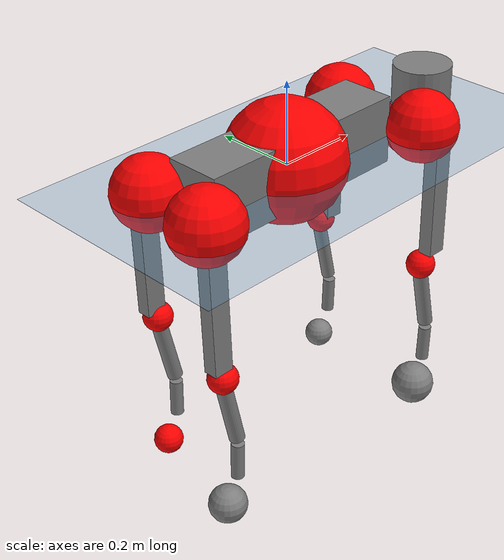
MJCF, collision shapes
<mujoco model="go2">
  <compiler angle="radian" assetdir="assets" balanceinertia="true" inertiafromgeom="false"/>

  <option timestep="0.005" density="1.2" viscosity="2e-05"/>

  <size nkey="1"/>

  <visual>
    <quality shadowsize="8192"/>
    <map shadowclip="0.5"/>
  </visual>

  <default>
    <default class="/">
      <geom contype="0" conaffinity="0" group="1" solref="-1000 -80"/>
      <site size="0.01 0.005 0.005" group="5"/>
      <general forcelimited="true" biastype="affine" gainprm="20" biasprm="0 -20 -0.5"/>
      <default class="go2">
        <joint armature="0.01" damping="0.01" frictionloss="0.2"/>
        <geom condim="1" margin="0.001"/>
        <default class="visual">
          <geom type="mesh" group="2"/>
        </default>
        <default class="collision">
          <geom group="3"/>
          <default class="foot">
            <geom size="0.022 0 0" condim="6" priority="1" friction="0.8 0.02 0.01" solimp="0.015 1 0.022"/>
          </default>
        </default>
        <default class="reward_collision_sphere">
          <geom group="5" rgba="1 0 0 1"/>
        </default>
      </default>
    </default>
  </default>

  <asset>
    <texture type="skybox" colorspace="auto" name="//unnamed_texture_0" builtin="gradient" rgb1="0.95 0.95 0.95" rgb2="0.95 0.95 0.95" width="100" height="600"/>
    <texture type="2d" colorspace="auto" name="texplane" builtin="checker" rgb1="0.345 0.575 0.748" rgb2="0.345 0.575 0.748" markrgb="1 1 1" width="512" height="512"/>
    <material name="MatPlane" class="/" texture="texplane" texuniform="true" texrepeat="2 2" specular="0.9"/>
    <material name="metal" class="/" rgba="0.9 0.95 0.95 1"/>
    <material name="black" class="/" rgba="0 0 0 1"/>
    <material name="white" class="/"/>
    <material name="gray" class="/" rgba="0.671705 0.692426 0.77427 1"/>
    <mesh name="base_0" class="/" file="base_0.obj"/>
    <mesh name="base_1" class="/" file="base_1.obj"/>
    <mesh name="base_2" class="/" file="base_2.obj"/>
    <mesh name="base_3" class="/" file="base_3.obj"/>
    <mesh name="base_4" class="/" file="base_4.obj"/>
    <mesh name="hip_0" class="/" file="hip_0.obj"/>
    <mesh name="hip_1" class="/" file="hip_1.obj"/>
    <mesh name="thigh_0" class="/" file="thigh_0.obj"/>
    <mesh name="thigh_1" class="/" file="thigh_1.obj"/>
    <mesh name="thigh_mirror_0" class="/" file="thigh_mirror_0.obj"/>
    <mesh name="thigh_mirror_1" class="/" file="thigh_mirror_1.obj"/>
    <mesh name="calf_0" class="/" file="calf_0.obj"/>
    <mesh name="calf_1" class="/" file="calf_1.obj"/>
    <mesh name="calf_mirror_0" class="/" file="calf_mirror_0.obj"/>
    <mesh name="calf_mirror_1" class="/" file="calf_mirror_1.obj"/>
    <mesh name="foot" class="/" file="foot.obj"/>
  </asset>

  <worldbody>
    <geom name="floor" class="/" size="100 100 0.125" type="plane" group="0" material="MatPlane"/>
    <light name="toplight_shadow" class="/" pos="0 0 5" dir="0.0990148 0.0990148 -0.990148" type="directional" ambient="0.04 0.04 0.04" diffuse="0.55 0.55 0.55" specular="0.12 0.12 0.12"/>
    <light name="toplight_fill" class="/" pos="0 0 5" dir="0.0990148 0.0990148 -0.990148" type="directional" castshadow="false" ambient="0.04 0.04 0.04" diffuse="0.3 0.3 0.3" specular="0.08 0.08 0.08"/>
    <body name="trunk" childclass="go2" pos="-0.00444887 0.00102239 0.0129418" quat="0.999997 -0.00208396 -0.00124424 0.000239615">
      <inertial pos="0.049291 0.0157057 -0.0189012" quat="-0.0141256 0.691971 -0.0295837 0.721181" mass="20.9741" diaginertia="0.972761 0.0704006 0.314542"/>
      <joint name="//unnamed_joint_0" type="free" armature="0" damping="0" frictionloss="0"/>
      <geom name="//unnamed_geom_1" class="visual" material="black" mesh="base_0"/>
      <geom name="//unnamed_geom_2" class="visual" material="black" mesh="base_1"/>
      <geom name="//unnamed_geom_3" class="visual" material="black" mesh="base_2"/>
      <geom name="//unnamed_geom_4" class="visual" material="white" mesh="base_3"/>
      <geom name="//unnamed_geom_5" class="visual" material="gray" mesh="base_4"/>
      <geom name="trunk_1" class="collision" size="0.273937 0.0680837 0.0830111" type="box"/>
      <geom name="trunk_2" class="collision" size="0.0728167 0.0655351" pos="0.475634 0 0.0172199" type="cylinder"/>
      <geom name="trunk_3" class="collision" size="0.0684477" pos="0.488985 0 -0.103319"/>
      <geom name="//unnamed_geom_9" class="reward_collision_sphere" size="0.145633"/>
      <geom name="//unnamed_geom_10" class="reward_collision_sphere" size="0.0873801" pos="0.467289 0 -0.0774896"/>
      <site name="imu" pos="0.0463407 0.0269414 -0.00519888" size="0.0145633"/>
      <camera name="track" pos="0 -1.95625 0" quat="0.707107 0.707107 0 0" mode="trackcom"/>
      <camera name="ego_camera" pos="0.520694 0 0.0774896" quat="-0.5 -0.5 0.5 0.5"/>
      <body name="FL_hip" pos="0.31742 0.0544058 0.0028011" quat="0.999987 0.00297588 0.000377713 0.00422976">
        <inertial pos="-0.0248632 0.0124067 0.00369032" quat="0.528614 0.473694 0.471715 0.523132" mass="2.62088" diaginertia="0.0143833 0.000571415 0.00678265"/>
        <joint name="FL_hip_joint" pos="0 0 0" axis="0.997656 -0.0661375 0.0175765" stiffness="0.038957" range="-0.966801 0.822763" armature="0.00215953" damping="0.0869952" frictionloss="0.380444"/>
        <geom name="//unnamed_geom_11" class="visual" material="metal" mesh="hip_0"/>
        <geom name="//unnamed_geom_12" class="visual" material="gray" mesh="hip_1"/>
        <geom name="//unnamed_geom_13" class="collision" size="0.0669914 0.0291267" pos="0 0.0782499 0" quat="0.707107 0.707107 0 0" type="cylinder"/>
        <geom name="//unnamed_geom_14" class="reward_collision_sphere" size="0.0873801" pos="0 0.0684687 0"/>
        <body name="FL_thigh" pos="1.32828e-05 0.0976025 0.000394187" quat="0.999998 0.00193224 -0.000191411 0.000706688">
          <inertial pos="-0.0157415 -0.0205765 -0.0724524" quat="0.833867 0.100393 0.0131359 0.5426" mass="2.88009" diaginertia="0.0880529 0.00501388 0.0136041"/>
          <joint name="FL_thigh_joint" pos="0 0 0" axis="-0.0197988 0.996173 -0.0851299" range="-1.42659 3.36649" armature="0.0105708" damping="0.0453207" frictionloss="0.518666"/>
          <geom name="//unnamed_geom_15" class="visual" material="metal" mesh="thigh_0"/>
          <geom name="//unnamed_geom_16" class="visual" material="gray" mesh="thigh_1"/>
          <geom name="//unnamed_geom_17" class="collision" size="0.1551 0.0178401 0.0247577" pos="0 0 -0.183392" quat="0.707107 0 0.707107 0" type="box"/>
          <body name="FL_calf" pos="-0.0144811 0.0148762 -0.348995" quat="0.999974 -0.00187785 -0.0033268 -0.0061407">
            <inertial pos="0.0175107 -0.000539486 -0.236333" quat="0.718763 -0.0295133 -0.019555 0.694353" mass="0.884272" diaginertia="0.0219732 0.0012993 0.000992719"/>
            <joint name="FL_calf_joint" pos="0 0 0" axis="-0.0526852 0.998464 -0.0171629" stiffness="0.0143755" range="-2.47244 -1.02071" armature="0.00727281" damping="0.0791" frictionloss="0.114528"/>
            <geom name="//unnamed_geom_18" class="visual" material="gray" mesh="calf_0"/>
            <geom name="//unnamed_geom_19" class="visual" material="black" mesh="calf_1"/>
            <geom name="FL_calf0" class="collision" size="0.017476 0.0873801" pos="0.0133511 0 -0.103319" quat="0.994493 0 -0.104807 0" type="cylinder"/>
            <geom name="//unnamed_geom_21" class="collision" size="0.0160197 0.0473309" pos="0.0333778 0 -0.254855" quat="0.999688 0 0.0249974 0" type="cylinder"/>
            <geom name="//unnamed_geom_22" class="visual" pos="0 0 -0.366784" quat="1 0 0 0" material="black" mesh="foot"/>
            <geom name="FL_foot" class="foot" size="0.0368737" pos="-0.00333778 0 -0.366784"/>
            <geom name="//unnamed_geom_24" class="reward_collision_sphere" size="0.0364084"/>
            <geom name="//unnamed_geom_25" class="reward_collision_sphere" size="0.0364084" pos="-0.00333778 0 -0.366784"/>
            <site name="FL_foot" class="foot" pos="-0.00333778 0 -0.366784" size="0.0145633"/>
          </body>
        </body>
      </body>
      <body name="FR_hip" pos="0.33509 -0.0503311 0.0043566" quat="0.999999 0.000112376 0.00118747 -1.41119e-05">
        <inertial pos="-0.0244852 0.00289505 -0.00436738" quat="0.498721 0.495632 0.502949 0.502661" mass="1.9396" diaginertia="0.0109197 0.000389001 0.0061288"/>
        <joint name="FR_hip_joint" pos="0 0 0" axis="0.999022 -0.0429845 0.0103252" stiffness="0.0414495" range="-0.725997 0.932321" armature="0.0251687" damping="0.0188336" frictionloss="0.520573"/>
        <geom name="//unnamed_geom_26" class="visual" pos="0 -6.48025e-09 -2.77951e-07" quat="4.63268e-05 1 0 0" material="metal" mesh="hip_0"/>
        <geom name="//unnamed_geom_27" class="visual" pos="0 -1.05053e-08 6.8748e-07" quat="4.63268e-05 1 0 0" material="gray" mesh="hip_1"/>
        <geom name="//unnamed_geom_28" class="collision" size="0.0669914 0.0291267" pos="0 -0.0782499 0" quat="0.707107 0.707107 0 0" type="cylinder"/>
        <geom name="//unnamed_geom_29" class="reward_collision_sphere" size="0.0873801" pos="0 -0.0684687 0"/>
        <body name="FR_thigh" pos="0.00983053 -0.109921 0.0105778" quat="0.999995 -0.00102799 0.00201753 0.00211695">
          <inertial pos="-0.00526931 0.0162315 -0.0519456" quat="0.510995 -0.0710501 0.11996 0.848201" mass="5.04711" diaginertia="0.0852611 0.00520279 0.0136318"/>
          <joint name="FR_thigh_joint" pos="0 0 0" axis="0.0590829 -0.99753 0.0379872" stiffness="0.0130511" range="-3.84283 1.32028" armature="0.0139944" damping="0.0845046" frictionloss="0.0171564"/>
          <geom name="//unnamed_geom_30" class="visual" material="metal" mesh="thigh_mirror_0"/>
          <geom name="//unnamed_geom_31" class="visual" material="gray" mesh="thigh_mirror_1"/>
          <geom name="//unnamed_geom_32" class="collision" size="0.1551 0.0178401 0.0247577" pos="0 0 -0.183392" quat="0.707107 0 0.707107 0" type="box"/>
          <body name="FR_calf" pos="-0.0156042 0.016593 -0.376125" quat="0.999998 0.000576586 -0.00194776 0.000451693">
            <inertial pos="0.0122377 0.00429311 -0.259984" quat="0.685133 0.00889981 0.0519212 0.726511" mass="0.805463" diaginertia="0.0237336 0.00156032 0.000774557"/>
            <joint name="FR_calf_joint" pos="0 0 0" axis="-0.000410579 -0.99981 0.0195084" range="1.07068 2.47893" armature="0.0205379" damping="0" frictionloss="0.541393"/>
            <geom name="//unnamed_geom_33" class="visual" material="gray" mesh="calf_mirror_0"/>
            <geom name="//unnamed_geom_34" class="visual" material="black" mesh="calf_mirror_1"/>
            <geom name="FR_calf0" class="collision" size="0.0189324 0.0873801" pos="0.0166889 0 -0.103319" quat="0.995004 0 -0.0998334 0" type="cylinder"/>
            <geom name="//unnamed_geom_36" class="collision" size="0.0160197 0.0473309" pos="0.0333778 0 -0.254855" quat="0.999688 0 0.0249974 0" type="cylinder"/>
            <geom name="//unnamed_geom_37" class="visual" pos="0 0 -0.366784" quat="1 0 0 0" material="black" mesh="foot"/>
            <geom name="FR_foot" class="foot" size="0.0547912" pos="-0.00333778 0 -0.366784"/>
            <geom name="//unnamed_geom_39" class="reward_collision_sphere" size="0.0364084"/>
            <geom name="//unnamed_geom_40" class="reward_collision_sphere" size="0.0364084" pos="-0.00333778 0 -0.366784"/>
            <site name="FR_foot" class="foot" pos="-0.00333778 0 -0.366784" size="0.0145633"/>
          </body>
        </body>
      </body>
      <body name="RL_hip" pos="-0.305238 0.0357658 0.000415402" quat="0.999993 -0.00266918 -0.00277691 0.000323146">
        <inertial pos="-0.000982336 -0.0142263 -0.0038489" quat="0.475394 0.546812 0.482995 0.491644" mass="2.064" diaginertia="0.0150621 0.000496921 0.0103224"/>
        <joint name="RL_hip_joint" pos="0 0 0" axis="-0.999055 -0.00843686 0.0426469" stiffness="0.0429462" range="-1.22659 1.4235" armature="0.0269474" damping="0.0727311" frictionloss="0.340331"/>
        <geom name="//unnamed_geom_41" class="visual" pos="4.62586e-10 0 9.06776e-08" quat="4.63268e-05 0 1 0" material="metal" mesh="hip_0"/>
        <geom name="//unnamed_geom_42" class="visual" pos="7.49908e-10 0 8.04181e-08" quat="4.63268e-05 0 1 0" material="gray" mesh="hip_1"/>
        <geom name="//unnamed_geom_43" class="collision" size="0.0669914 0.0291267" pos="0 0.0782499 0" quat="0.707107 0.707107 0 0" type="cylinder"/>
        <geom name="//unnamed_geom_44" class="reward_collision_sphere" size="0.0873801" pos="0 0.0684687 0"/>
        <body name="RL_thigh" pos="0.0122589 0.111913 0.00722789" quat="1 -7.48167e-05 6.53393e-06 3.14592e-05">
          <inertial pos="-0.0080013 -0.0363185 -0.0506055" quat="0.82016 0.0838219 -0.00750043 0.565911" mass="3.60281" diaginertia="0.0775779 0.00600848 0.0119943"/>
          <joint name="RL_thigh_joint" pos="0 0 0" axis="0.0126996 0.997238 0.0731779" range="-0.570044 4.6321" armature="0.022295" damping="0.0591685" frictionloss="0.164913"/>
          <geom name="//unnamed_geom_45" class="visual" material="metal" mesh="thigh_0"/>
          <geom name="//unnamed_geom_46" class="visual" material="gray" mesh="thigh_1"/>
          <geom name="//unnamed_geom_47" class="collision" size="0.1551 0.0178401 0.0247577" pos="0 0 -0.183392" quat="0.707107 0 0.707107 0" type="box"/>
          <body name="RL_calf" pos="0.012389 -0.00332856 -0.357755" quat="0.999989 -0.00323718 -0.00134435 0.00305243">
            <inertial pos="0.0110015 0.000404668 -0.24062" quat="0.715807 0.0812632 0.0424102 0.692256" mass="0.735675" diaginertia="0.0179292 0.00119985 0.000962679"/>
            <joint name="RL_calf_joint" pos="0 0 0" axis="-0.0547326 0.997678 -0.0405373" range="-2.70689 -0.842808" armature="0.023968" damping="0.0315854" frictionloss="0.110393"/>
            <geom name="//unnamed_geom_48" class="visual" material="gray" mesh="calf_0"/>
            <geom name="//unnamed_geom_49" class="visual" material="black" mesh="calf_1"/>
            <geom name="RL_calf0" class="collision" size="0.0189324 0.0873801" pos="0.0166889 0 -0.103319" quat="0.995004 0 -0.0998334 0" type="cylinder"/>
            <geom name="//unnamed_geom_51" class="collision" size="0.0160197 0.0473309" pos="0.0333778 0 -0.254855" quat="0.999688 0 0.0249974 0" type="cylinder"/>
            <geom name="//unnamed_geom_52" class="visual" pos="0 0 -0.366784" quat="1 0 0 0" material="black" mesh="foot"/>
            <geom name="RL_foot" class="foot" size="0.0101524" pos="-0.00333778 0 -0.366784"/>
            <geom name="//unnamed_geom_54" class="reward_collision_sphere" size="0.0364084"/>
            <geom name="//unnamed_geom_55" class="reward_collision_sphere" size="0.0364084" pos="-0.00333778 0 -0.366784"/>
            <site name="RL_foot" class="foot" pos="-0.00333778 0 -0.366784" size="0.0145633"/>
          </body>
        </body>
      </body>
      <body name="RR_hip" pos="-0.326378 -0.0292889 0.00994013" quat="0.999976 -0.00694224 -0.000689116 -0.000456201">
        <inertial pos="0.0254071 0.000657044 -0.0154415" quat="0.505029 0.490551 0.52403 0.479268" mass="2.34119" diaginertia="0.0126601 0.000611482 0.0099989"/>
        <joint name="RR_hip_joint" pos="0 0 0" axis="-0.999921 -0.00846367 0.00925745" stiffness="0.0522978" range="-0.749278 0.696389" armature="0.0165217" damping="0.0677249" frictionloss="0.269171"/>
        <geom name="//unnamed_geom_56" class="visual" pos="-4.86502e-10 -6.48025e-09 3.68629e-07" quat="2.14617e-09 4.63268e-05 4.63268e-05 -1" material="metal" mesh="hip_0"/>
        <geom name="//unnamed_geom_57" class="visual" pos="-6.90758e-10 -1.05053e-08 -6.07062e-07" quat="2.14617e-09 4.63268e-05 4.63268e-05 -1" material="gray" mesh="hip_1"/>
        <geom name="//unnamed_geom_58" class="collision" size="0.0669914 0.0291267" pos="0 -0.0782499 0" quat="0.707107 0.707107 0 0" type="cylinder"/>
        <geom name="//unnamed_geom_59" class="reward_collision_sphere" size="0.0873801" pos="0 -0.0684687 0"/>
        <body name="RR_thigh" pos="-0.00382371 -0.0830421 -0.0163395" quat="0.999998 0.000512083 -0.00191587 0.000843424">
          <inertial pos="-0.0193829 0.0285679 -0.0624044" quat="0.553415 -0.016501 0.0867348 0.828213" mass="5.32363" diaginertia="0.112618 0.00617338 0.014989"/>
          <joint name="RR_thigh_joint" pos="0 0 0" axis="-0.0576216 -0.99734 -0.0446452" stiffness="0.00520552" range="-4.61317 0.504662" armature="0.0213691" damping="0.0555759" frictionloss="0.266248"/>
          <geom name="//unnamed_geom_60" class="visual" material="metal" mesh="thigh_mirror_0"/>
          <geom name="//unnamed_geom_61" class="visual" material="gray" mesh="thigh_mirror_1"/>
          <geom name="//unnamed_geom_62" class="collision" size="0.1551 0.0178401 0.0247577" pos="0 0 -0.183392" quat="0.707107 0 0.707107 0" type="box"/>
          <body name="RR_calf" pos="0.0160031 0.00672505 -0.372696" quat="0.999986 0.00346533 0.00307559 0.00239354">
            <inertial pos="0.0197187 3.4071e-05 -0.247331" quat="0.671003 0.00937408 0.0609639 0.738885" mass="0.662076" diaginertia="0.0208528 0.00101324 0.000730674"/>
            <joint name="RR_calf_joint" pos="0 0 0" axis="-0.00258174 -0.999996 0.00072989" range="0.965566 2.88544" armature="0.0270382" damping="0" frictionloss="0.28036"/>
            <geom name="//unnamed_geom_63" class="visual" material="gray" mesh="calf_mirror_0"/>
            <geom name="//unnamed_geom_64" class="visual" material="black" mesh="calf_mirror_1"/>
            <geom name="RR_calf0" class="collision" size="0.0189324 0.0873801" pos="0.0166889 0 -0.103319" quat="0.995004 0 -0.0998334 0" type="cylinder"/>
            <geom name="//unnamed_geom_66" class="collision" size="0.0160197 0.0473309" pos="0.0333778 0 -0.254855" quat="0.999688 0 0.0249974 0" type="cylinder"/>
            <geom name="//unnamed_geom_67" class="visual" pos="0 0 -0.366784" quat="1 0 0 0" material="black" mesh="foot"/>
            <geom name="RR_foot" class="foot" size="0.047155" pos="-0.00333778 0 -0.366784"/>
            <geom name="//unnamed_geom_69" class="reward_collision_sphere" size="0.0364084"/>
            <geom name="//unnamed_geom_70" class="reward_collision_sphere" size="0.0364084" pos="-0.00333778 0 -0.366784"/>
            <site name="RR_foot" class="foot" pos="-0.00333778 0 -0.366784" size="0.0145633"/>
          </body>
        </body>
      </body>
    </body>
  </worldbody>

  <contact>
    <pair class="/" geom1="floor" geom2="FL_foot" name="//unnamed_contact_0"/>
    <pair class="/" geom1="floor" geom2="FR_foot" name="//unnamed_contact_1"/>
    <pair class="/" geom1="floor" geom2="RL_foot" name="//unnamed_contact_2"/>
    <pair class="/" geom1="floor" geom2="RR_foot" name="//unnamed_contact_3"/>
  </contact>

  <actuator>
    <general name="FL_hip" class="/" joint="FL_hip_joint" forcerange="-42.0666 42.0666" gainprm="24.3227" biasprm="0 -24.3227 -0.852494"/>
    <general name="FL_thigh" class="/" joint="FL_thigh_joint" forcerange="-49.2899 49.2899" gainprm="24.3227" biasprm="0 -24.3227 -0.852494"/>
    <general name="FL_calf" class="/" joint="FL_calf_joint" forcerange="-84.2191 84.2191" gainprm="24.3227" biasprm="0 -24.3227 -0.852494"/>
    <general name="FR_hip" class="/" joint="FR_hip_joint" forcerange="-50.0423 50.0423" gainprm="24.3227" biasprm="0 -24.3227 -0.852494"/>
    <general name="FR_thigh" class="/" joint="FR_thigh_joint" forcerange="-21.5123 21.5123" gainprm="24.3227" biasprm="0 -24.3227 -0.852494"/>
    <general name="FR_calf" class="/" joint="FR_calf_joint" forcerange="-104.392 104.392" gainprm="24.3227" biasprm="0 -24.3227 -0.852494"/>
    <general name="RL_hip" class="/" joint="RL_hip_joint" forcerange="-33.4153 33.4153" gainprm="24.3227" biasprm="0 -24.3227 -0.852494"/>
    <general name="RL_thigh" class="/" joint="RL_thigh_joint" forcerange="-54.7352 54.7352" gainprm="24.3227" biasprm="0 -24.3227 -0.852494"/>
    <general name="RL_calf" class="/" joint="RL_calf_joint" forcerange="-83.3951 83.3951" gainprm="24.3227" biasprm="0 -24.3227 -0.852494"/>
    <general name="RR_hip" class="/" joint="RR_hip_joint" forcerange="-45.3398 45.3398" gainprm="24.3227" biasprm="0 -24.3227 -0.852494"/>
    <general name="RR_thigh" class="/" joint="RR_thigh_joint" forcerange="-56.5691 56.5691" gainprm="24.3227" biasprm="0 -24.3227 -0.852494"/>
    <general name="RR_calf" class="/" joint="RR_calf_joint" forcerange="-29.5184 29.5184" gainprm="24.3227" biasprm="0 -24.3227 -0.852494"/>
  </actuator>

  <sensor>
    <gyro site="imu" name="imu_angular_velocity"/>
    <velocimeter site="imu" name="imu_linear_velocity"/>
    <framelinvel objtype="site" objname="FL_foot" name="FL_foot_global_linear_velocity"/>
    <framelinvel objtype="site" objname="FR_foot" name="FR_foot_global_linear_velocity"/>
    <framelinvel objtype="site" objname="RL_foot" name="RL_foot_global_linear_velocity"/>
    <framelinvel objtype="site" objname="RR_foot" name="RR_foot_global_linear_velocity"/>
  </sensor>

  <keyframe>
    <key name="home" qpos="0 0 0.325 1 0 0 0 0.1 0.8 -1.5 -0.1 -0.8 1.5 -0.1 0.8 -1.5 0.1 -0.8 1.5"/>
  </keyframe>
</mujoco>
